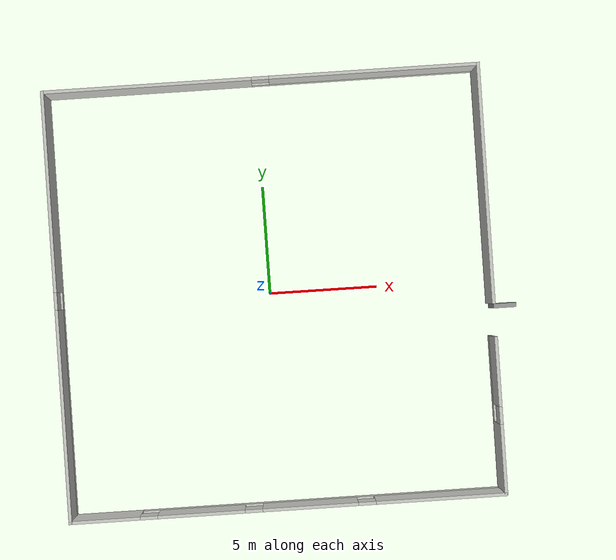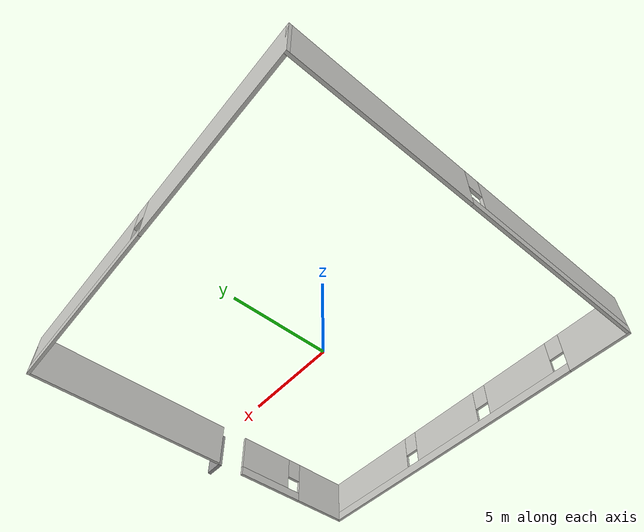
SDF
<?xml version='1.0'?>
<sdf version='1.7'>
  <model name='library1'>
    <pose>0.19142 -0.00572 0 0 -0 0</pose>
    <link name='Door_3'>
      <collision name='Door_3_Collision'>
        <geometry>
          <box>
            <size>1.03957 0.2 2</size>
          </box>
        </geometry>
        <pose>0 0 1 0 -0 0</pose>
      </collision>
      <visual name='Door_3_Visual'>
        <pose>0 0 1 0 -0 0</pose>
        <geometry>
          <box>
            <size>1.03957 0.2 2</size>
          </box>
        </geometry>
        <material>
          <script>
            <uri>file://media/materials/scripts/gazebo.material</uri>
            <name>Gazebo/Grey</name>
          </script>
        </material>
      </visual>
      <pose>10.4876 -1.24149 0 0 -0 0</pose>
    </link>
    <link name='Wall_10'>
      <pose>-9.925 -0 0 0 -0 -1.5708</pose>
      <visual name='Wall_10_Visual_0'>
        <pose>-5.2844 0 1.25 0 -0 0</pose>
        <geometry>
          <box>
            <size>9.1812 0.15 2.5</size>
          </box>
        </geometry>
        <material>
          <script>
            <uri>file://media/materials/scripts/gazebo.material</uri>
            <name>Gazebo/CeilingTiled</name>
          </script>
          <ambient>1 1 1 1</ambient>
        </material>
        <meta>
          <layer>0</layer>
        </meta>
      </visual>
      <collision name='Wall_10_Collision_0'>
        <geometry>
          <box>
            <size>9.1812 0.15 2.5</size>
          </box>
        </geometry>
        <pose>-5.2844 0 1.25 0 -0 0</pose>
      </collision>
      <visual name='Wall_10_Visual_1'>
        <pose>4.5906 0 0.25 0 -0 0</pose>
        <geometry>
          <box>
            <size>10.5688 0.15 0.5</size>
          </box>
        </geometry>
        <material>
          <script>
            <uri>file://media/materials/scripts/gazebo.material</uri>
            <name>Gazebo/CeilingTiled</name>
          </script>
          <ambient>1 1 1 1</ambient>
        </material>
        <meta>
          <layer>0</layer>
        </meta>
      </visual>
      <collision name='Wall_10_Collision_1'>
        <geometry>
          <box>
            <size>10.5688 0.15 0.5</size>
          </box>
        </geometry>
        <pose>4.5906 0 0.25 0 -0 0</pose>
      </collision>
      <visual name='Wall_10_Visual_2'>
        <pose>4.9906 0 1.5 0 -0 0</pose>
        <geometry>
          <box>
            <size>9.7688 0.15 2</size>
          </box>
        </geometry>
        <material>
          <script>
            <uri>file://media/materials/scripts/gazebo.material</uri>
            <name>Gazebo/CeilingTiled</name>
          </script>
          <ambient>1 1 1 1</ambient>
        </material>
        <meta>
          <layer>0</layer>
        </meta>
      </visual>
      <collision name='Wall_10_Collision_2'>
        <geometry>
          <box>
            <size>9.7688 0.15 2</size>
          </box>
        </geometry>
        <pose>4.9906 0 1.5 0 -0 0</pose>
      </collision>
      <visual name='Wall_10_Visual_3'>
        <pose>-0.293801 0 1.9 0 -0 0</pose>
        <geometry>
          <box>
            <size>0.8 0.15 1.2</size>
          </box>
        </geometry>
        <material>
          <script>
            <uri>file://media/materials/scripts/gazebo.material</uri>
            <name>Gazebo/CeilingTiled</name>
          </script>
          <ambient>1 1 1 1</ambient>
        </material>
        <meta>
          <layer>0</layer>
        </meta>
      </visual>
      <collision name='Wall_10_Collision_3'>
        <geometry>
          <box>
            <size>0.8 0.15 1.2</size>
          </box>
        </geometry>
        <pose>-0.293801 0 1.9 0 -0 0</pose>
      </collision>
    </link>
    <link name='Wall_18'>
      <collision name='Wall_18_Collision'>
        <geometry>
          <box>
            <size>11 0.15 2.5</size>
          </box>
        </geometry>
        <pose>0 0 1.25 0 -0 0</pose>
      </collision>
      <visual name='Wall_18_Visual'>
        <pose>0 0 1.25 0 -0 0</pose>
        <geometry>
          <box>
            <size>11 0.15 2.5</size>
          </box>
        </geometry>
        <material>
          <script>
            <uri>file://media/materials/scripts/gazebo.material</uri>
            <name>Gazebo/CeilingTiled</name>
          </script>
          <ambient>1 1 1 1</ambient>
        </material>
        <meta>
          <layer>0</layer>
        </meta>
      </visual>
      <pose>9.925 4.375 0 0 -0 -1.5708</pose>
    </link>
    <link name='Wall_2'>
      <pose>0 -9.8 0 0 -0 0</pose>
      <visual name='Wall_2_Visual_0'>
        <pose>-8.37705 0 1.25 0 -0 0</pose>
        <geometry>
          <box>
            <size>3.2459 0.15 2.5</size>
          </box>
        </geometry>
        <material>
          <script>
            <uri>file://media/materials/scripts/gazebo.material</uri>
            <name>Gazebo/CeilingTiled</name>
          </script>
          <ambient>1 1 1 1</ambient>
        </material>
        <meta>
          <layer>0</layer>
        </meta>
      </visual>
      <collision name='Wall_2_Collision_0'>
        <geometry>
          <box>
            <size>3.2459 0.15 2.5</size>
          </box>
        </geometry>
        <pose>-8.37705 0 1.25 0 -0 0</pose>
      </collision>
      <visual name='Wall_2_Visual_1'>
        <pose>1.62295 0 0.25 0 -0 0</pose>
        <geometry>
          <box>
            <size>16.7541 0.15 0.5</size>
          </box>
        </geometry>
        <material>
          <script>
            <uri>file://media/materials/scripts/gazebo.material</uri>
            <name>Gazebo/CeilingTiled</name>
          </script>
          <ambient>1 1 1 1</ambient>
        </material>
        <meta>
          <layer>0</layer>
        </meta>
      </visual>
      <collision name='Wall_2_Collision_1'>
        <geometry>
          <box>
            <size>16.7541 0.15 0.5</size>
          </box>
        </geometry>
        <pose>1.62295 0 0.25 0 -0 0</pose>
      </collision>
      <visual name='Wall_2_Visual_2'>
        <pose>-3.95811 0 1.5 0 -0 0</pose>
        <geometry>
          <box>
            <size>3.99196 0.15 2</size>
          </box>
        </geometry>
        <material>
          <script>
            <uri>file://media/materials/scripts/gazebo.material</uri>
            <name>Gazebo/CeilingTiled</name>
          </script>
          <ambient>1 1 1 1</ambient>
        </material>
        <meta>
          <layer>0</layer>
        </meta>
      </visual>
      <collision name='Wall_2_Collision_2'>
        <geometry>
          <box>
            <size>3.99196 0.15 2</size>
          </box>
        </geometry>
        <pose>-3.95811 0 1.5 0 -0 0</pose>
      </collision>
      <visual name='Wall_2_Visual_3'>
        <pose>1.01995 0 1.5 0 -0 0</pose>
        <geometry>
          <box>
            <size>4.36416 0.15 2</size>
          </box>
        </geometry>
        <material>
          <script>
            <uri>file://media/materials/scripts/gazebo.material</uri>
            <name>Gazebo/CeilingTiled</name>
          </script>
          <ambient>1 1 1 1</ambient>
        </material>
        <meta>
          <layer>0</layer>
        </meta>
      </visual>
      <collision name='Wall_2_Collision_3'>
        <geometry>
          <box>
            <size>4.36416 0.15 2</size>
          </box>
        </geometry>
        <pose>1.01995 0 1.5 0 -0 0</pose>
      </collision>
      <visual name='Wall_2_Visual_4'>
        <pose>7.00101 0 1.5 0 -0 0</pose>
        <geometry>
          <box>
            <size>5.99798 0.15 2</size>
          </box>
        </geometry>
        <material>
          <script>
            <uri>file://media/materials/scripts/gazebo.material</uri>
            <name>Gazebo/CeilingTiled</name>
          </script>
          <ambient>1 1 1 1</ambient>
        </material>
        <meta>
          <layer>0</layer>
        </meta>
      </visual>
      <collision name='Wall_2_Collision_4'>
        <geometry>
          <box>
            <size>5.99798 0.15 2</size>
          </box>
        </geometry>
        <pose>7.00101 0 1.5 0 -0 0</pose>
      </collision>
      <visual name='Wall_2_Visual_5'>
        <pose>-6.3541 0 1.9 0 -0 0</pose>
        <geometry>
          <box>
            <size>0.8 0.15 1.2</size>
          </box>
        </geometry>
        <material>
          <script>
            <uri>file://media/materials/scripts/gazebo.material</uri>
            <name>Gazebo/CeilingTiled</name>
          </script>
          <ambient>1 1 1 1</ambient>
        </material>
        <meta>
          <layer>0</layer>
        </meta>
      </visual>
      <collision name='Wall_2_Collision_5'>
        <geometry>
          <box>
            <size>0.8 0.15 1.2</size>
          </box>
        </geometry>
        <pose>-6.3541 0 1.9 0 -0 0</pose>
      </collision>
      <visual name='Wall_2_Visual_6'>
        <pose>-1.56213 0 1.9 0 -0 0</pose>
        <geometry>
          <box>
            <size>0.8 0.15 1.2</size>
          </box>
        </geometry>
        <material>
          <script>
            <uri>file://media/materials/scripts/gazebo.material</uri>
            <name>Gazebo/CeilingTiled</name>
          </script>
          <ambient>1 1 1 1</ambient>
        </material>
        <meta>
          <layer>0</layer>
        </meta>
      </visual>
      <collision name='Wall_2_Collision_6'>
        <geometry>
          <box>
            <size>0.8 0.15 1.2</size>
          </box>
        </geometry>
        <pose>-1.56213 0 1.9 0 -0 0</pose>
      </collision>
      <visual name='Wall_2_Visual_7'>
        <pose>3.60202 0 1.9 0 -0 0</pose>
        <geometry>
          <box>
            <size>0.8 0.15 1.2</size>
          </box>
        </geometry>
        <material>
          <script>
            <uri>file://media/materials/scripts/gazebo.material</uri>
            <name>Gazebo/CeilingTiled</name>
          </script>
          <ambient>1 1 1 1</ambient>
        </material>
        <meta>
          <layer>0</layer>
        </meta>
      </visual>
      <collision name='Wall_2_Collision_7'>
        <geometry>
          <box>
            <size>0.8 0.15 1.2</size>
          </box>
        </geometry>
        <pose>3.60202 0 1.9 0 -0 0</pose>
      </collision>
    </link>
    <link name='Wall_21'>
      <pose>9.925 -6.25 0 0 -0 1.5708</pose>
      <visual name='Wall_21_Visual_0'>
        <pose>-1.99727 0 1.25 0 -0 0</pose>
        <geometry>
          <box>
            <size>3.25545 0.15 2.5</size>
          </box>
        </geometry>
        <material>
          <script>
            <uri>file://media/materials/scripts/gazebo.material</uri>
            <name>Gazebo/CeilingTiled</name>
          </script>
          <ambient>1 1 1 1</ambient>
        </material>
        <meta>
          <layer>0</layer>
        </meta>
      </visual>
      <collision name='Wall_21_Collision_0'>
        <geometry>
          <box>
            <size>3.25545 0.15 2.5</size>
          </box>
        </geometry>
        <pose>-1.99727 0 1.25 0 -0 0</pose>
      </collision>
      <visual name='Wall_21_Visual_1'>
        <pose>1.62773 0 0.25 0 -0 0</pose>
        <geometry>
          <box>
            <size>3.99455 0.15 0.5</size>
          </box>
        </geometry>
        <material>
          <script>
            <uri>file://media/materials/scripts/gazebo.material</uri>
            <name>Gazebo/CeilingTiled</name>
          </script>
          <ambient>1 1 1 1</ambient>
        </material>
        <meta>
          <layer>0</layer>
        </meta>
      </visual>
      <collision name='Wall_21_Collision_1'>
        <geometry>
          <box>
            <size>3.99455 0.15 0.5</size>
          </box>
        </geometry>
        <pose>1.62773 0 0.25 0 -0 0</pose>
      </collision>
      <visual name='Wall_21_Visual_2'>
        <pose>2.02773 0 1.5 0 -0 0</pose>
        <geometry>
          <box>
            <size>3.19455 0.15 2</size>
          </box>
        </geometry>
        <material>
          <script>
            <uri>file://media/materials/scripts/gazebo.material</uri>
            <name>Gazebo/CeilingTiled</name>
          </script>
          <ambient>1 1 1 1</ambient>
        </material>
        <meta>
          <layer>0</layer>
        </meta>
      </visual>
      <collision name='Wall_21_Collision_2'>
        <geometry>
          <box>
            <size>3.19455 0.15 2</size>
          </box>
        </geometry>
        <pose>2.02773 0 1.5 0 -0 0</pose>
      </collision>
      <visual name='Wall_21_Visual_3'>
        <pose>0.030453 0 1.9 0 -0 0</pose>
        <geometry>
          <box>
            <size>0.8 0.15 1.2</size>
          </box>
        </geometry>
        <material>
          <script>
            <uri>file://media/materials/scripts/gazebo.material</uri>
            <name>Gazebo/CeilingTiled</name>
          </script>
          <ambient>1 1 1 1</ambient>
        </material>
        <meta>
          <layer>0</layer>
        </meta>
      </visual>
      <collision name='Wall_21_Collision_3'>
        <geometry>
          <box>
            <size>0.8 0.15 1.2</size>
          </box>
        </geometry>
        <pose>0.030453 0 1.9 0 -0 0</pose>
      </collision>
    </link>
    <link name='Wall_5'>
      <pose>0 9.8 0 0 -0 0</pose>
      <visual name='Wall_5_Visual_0'>
        <pose>-5.1992 0 1.25 0 -0 0</pose>
        <geometry>
          <box>
            <size>9.6016 0.15 2.5</size>
          </box>
        </geometry>
        <material>
          <script>
            <uri>file://media/materials/scripts/gazebo.material</uri>
            <name>Gazebo/CeilingTiled</name>
          </script>
          <ambient>1 1 1 1</ambient>
        </material>
        <meta>
          <layer>0</layer>
        </meta>
      </visual>
      <collision name='Wall_5_Collision_0'>
        <geometry>
          <box>
            <size>9.6016 0.15 2.5</size>
          </box>
        </geometry>
        <pose>-5.1992 0 1.25 0 -0 0</pose>
      </collision>
      <visual name='Wall_5_Visual_1'>
        <pose>4.8008 0 0.25 0 -0 0</pose>
        <geometry>
          <box>
            <size>10.3984 0.15 0.5</size>
          </box>
        </geometry>
        <material>
          <script>
            <uri>file://media/materials/scripts/gazebo.material</uri>
            <name>Gazebo/CeilingTiled</name>
          </script>
          <ambient>1 1 1 1</ambient>
        </material>
        <meta>
          <layer>0</layer>
        </meta>
      </visual>
      <collision name='Wall_5_Collision_1'>
        <geometry>
          <box>
            <size>10.3984 0.15 0.5</size>
          </box>
        </geometry>
        <pose>4.8008 0 0.25 0 -0 0</pose>
      </collision>
      <visual name='Wall_5_Visual_2'>
        <pose>5.2008 0 1.5 0 -0 0</pose>
        <geometry>
          <box>
            <size>9.5984 0.15 2</size>
          </box>
        </geometry>
        <material>
          <script>
            <uri>file://media/materials/scripts/gazebo.material</uri>
            <name>Gazebo/CeilingTiled</name>
          </script>
          <ambient>1 1 1 1</ambient>
        </material>
        <meta>
          <layer>0</layer>
        </meta>
      </visual>
      <collision name='Wall_5_Collision_2'>
        <geometry>
          <box>
            <size>9.5984 0.15 2</size>
          </box>
        </geometry>
        <pose>5.2008 0 1.5 0 -0 0</pose>
      </collision>
      <visual name='Wall_5_Visual_3'>
        <pose>0.001604 0 1.9 0 -0 0</pose>
        <geometry>
          <box>
            <size>0.8 0.15 1.2</size>
          </box>
        </geometry>
        <material>
          <script>
            <uri>file://media/materials/scripts/gazebo.material</uri>
            <name>Gazebo/CeilingTiled</name>
          </script>
          <ambient>1 1 1 1</ambient>
        </material>
        <meta>
          <layer>0</layer>
        </meta>
      </visual>
      <collision name='Wall_5_Collision_3'>
        <geometry>
          <box>
            <size>0.8 0.15 1.2</size>
          </box>
        </geometry>
        <pose>0.001604 0 1.9 0 -0 0</pose>
      </collision>
    </link>
    <static>1</static>
  </model>
</sdf>
